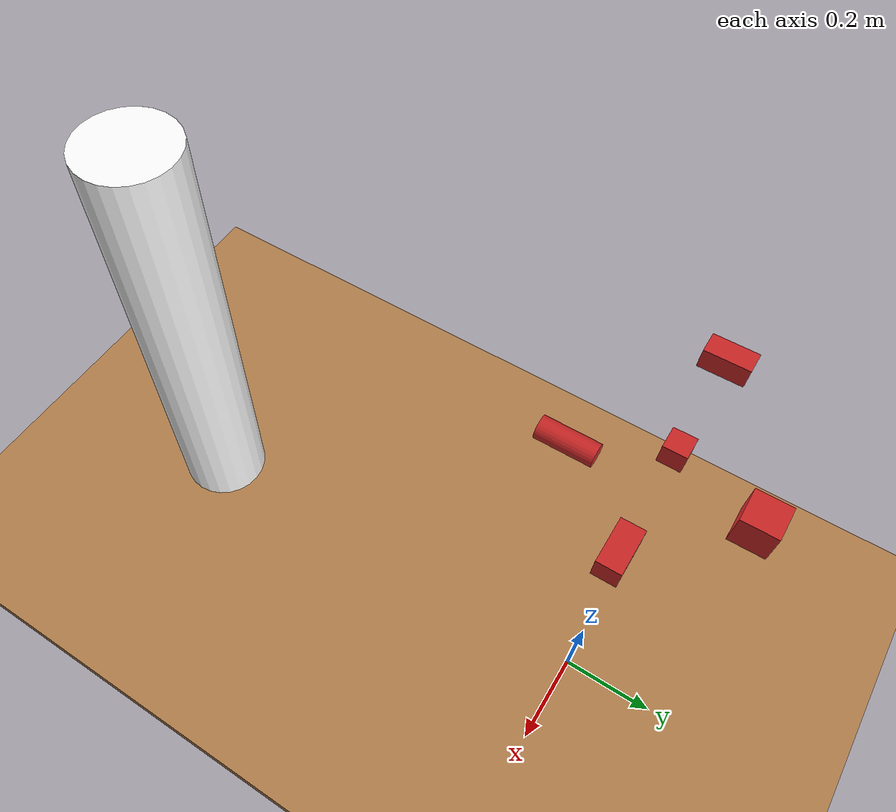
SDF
<sdf version="1.6">
 <world name="default">
  <gravity>0 0 -9.8</gravity>
  <magnetic_field>6e-06 2.3e-05 -4.2e-05</magnetic_field>
  <atmosphere type="adiabatic"/>
  <physics type="ode">
   <gravity>0.000000 0.000000 -9.810000</gravity>
   <max_contacts>5</max_contacts>
   <ode>
    <solver><type>quick</type><iters>50</iters><precon_iters>0</precon_iters><sor>1.300000</sor></solver>
    <constraints>
     <cfm>0.000000</cfm>
     <erp>0.200000</erp>
     <quickStep>true</quickStep>
     <quickStepIters>10</quickStepIters>
     <quickStepW>1.3</quickStepW>
     <contact_max_correcting_vel>100.000000</contact_max_correcting_vel>
     <contact_surface_layer>0.001000</contact_surface_layer>
     <updateRate>-1.4</updateRate>
    </constraints>
   </ode>
  </physics>
  <scene><ambient>0.4 0.4 0.4 1</ambient><background>0.7 0.7 1 1</background><shadows>1</shadows></scene>
  <spherical_coordinates>
   <surface_model>EARTH_WGS84</surface_model>
   <latitude_deg>0</latitude_deg>
   <longitude_deg>0</longitude_deg>
   <elevation>0</elevation>
   <heading_deg>0</heading_deg>
  </spherical_coordinates>
  <model name="cricket2_ball">
   <link name="link">
    <pose>0 0 0.0375 0 -0 0</pose>
    <inertial>
     <mass>0.1467</mass>
     <inertia>
      <ixx>8.25187e-05</ixx>
      <ixy>0</ixy>
      <ixz>0</ixz>
      <iyy>8.25187e-05</iyy>
      <iyz>0</iyz>
      <izz>8.25187e-05</izz>
     </inertia>
    </inertial>
    <collision name="collision">
     <geometry><box><size>0.06 0.06 0.06</size></box></geometry>
     <surface>
      <contact>
       <poissons_ratio>0.347</poissons_ratio>
       <elastic_modulus>8.8e+09</elastic_modulus>
       <ode><kp>100000</kp><kd>100</kd><max_vel>100</max_vel><min_depth>0.001</min_depth></ode>
      </contact>
      <friction>
       <torsional>
        <coefficient>1</coefficient>
        <use_patch_radius>0</use_patch_radius>
        <surface_radius>0.01</surface_radius>
       </torsional>
      </friction>
     </surface>
    </collision>
    <visual name="visual">
     <geometry><box><size>0.06 0.06 0.06</size></box></geometry>
     <material>
      <script><uri>file://media/materials/scripts/gazebo.material</uri><name>Gazebo/Red</name></script>
     </material>
    </visual>
    <velocity_decay><linear>0</linear><angular>0.005</angular></velocity_decay>
   </link>
   <pose>0.0 0.15 0.82 0.003644 -0.00082 0.000309</pose>
  </model>
  <model name="cricket4_ball">
   <link name="link">
    <pose>0 0 0.0375 0 -0 0</pose>
    <inertial>
     <mass>0.1467</mass>
     <inertia>
      <ixx>8.25187e-05</ixx>
      <ixy>0</ixy>
      <ixz>0</ixz>
      <iyy>8.25187e-05</iyy>
      <iyz>0</iyz>
      <izz>8.25187e-05</izz>
     </inertia>
    </inertial>
    <collision name="collision">
     <geometry><box><size>0.08 0.04 0.05</size></box></geometry>
     <surface>
      <contact>
       <poissons_ratio>0.347</poissons_ratio>
       <elastic_modulus>8.8e+09</elastic_modulus>
       <ode><kp>100000</kp><kd>100</kd><max_vel>100</max_vel><min_depth>0.001</min_depth></ode>
      </contact>
      <friction>
       <torsional>
        <coefficient>1</coefficient>
        <use_patch_radius>0</use_patch_radius>
        <surface_radius>0.01</surface_radius>
       </torsional>
      </friction>
     </surface>
    </collision>
    <visual name="visual">
     <geometry><box><size>0.08 0.04 0.04</size></box></geometry>
     <material>
      <script><uri>file://media/materials/scripts/gazebo.material</uri><name>Gazebo/Red</name></script>
     </material>
    </visual>
    <velocity_decay><linear>0</linear><angular>0.005</angular></velocity_decay>
   </link>
   <pose>0.15003 0.0 0.82 0.003644 -0.00082 0.000309</pose>
  </model>
  <model name="cricket6_ball">
   <link name="link">
    <pose>0 0 0.0375 0 -0 0</pose>
    <inertial>
     <mass>0.1467</mass>
     <inertia>
      <ixx>8.25187e-05</ixx>
      <ixy>0</ixy>
      <ixz>0</ixz>
      <iyy>8.25187e-05</iyy>
      <iyz>0</iyz>
      <izz>8.25187e-05</izz>
     </inertia>
    </inertial>
    <collision name="collision">
     <geometry><box><size>0.04 0.04 0.04</size></box></geometry>
     <surface>
      <contact>
       <poissons_ratio>0.347</poissons_ratio>
       <elastic_modulus>8.8e+09</elastic_modulus>
       <ode><kp>100000</kp><kd>100</kd><max_vel>100</max_vel><min_depth>0.001</min_depth></ode>
      </contact>
      <friction>
       <torsional>
        <coefficient>1</coefficient>
        <use_patch_radius>0</use_patch_radius>
        <surface_radius>0.01</surface_radius>
       </torsional>
      </friction>
     </surface>
    </collision>
    <visual name="visual">
     <geometry><box><size>0.04 0.04 0.04</size></box></geometry>
     <material>
      <script><uri>file://media/materials/scripts/gazebo.material</uri><name>Gazebo/Red</name></script>
     </material>
    </visual>
    <velocity_decay><linear>0</linear><angular>0.005</angular></velocity_decay>
   </link>
   <pose>-0.05 -0.0 0.82 0.003644 -0.00082 0.000309</pose>
  </model>
  <model name="cricket8_ball">
   <link name="link">
    <pose>0 0 0.0375 0 -0 0</pose>
    <inertial>
     <mass>0.1467</mass>
     <inertia>
      <ixx>8.25187e-05</ixx>
      <ixy>0</ixy>
      <ixz>0</ixz>
      <iyy>8.25187e-05</iyy>
      <iyz>0</iyz>
      <izz>8.25187e-05</izz>
     </inertia>
    </inertial>
    <collision name="collision">
     <geometry><box><size>0.04 0.08 0.04</size></box></geometry>
     <surface>
      <contact>
       <poissons_ratio>0.347</poissons_ratio>
       <elastic_modulus>8.8e+09</elastic_modulus>
       <ode><kp>100000</kp><kd>100</kd><max_vel>100</max_vel><min_depth>0.001</min_depth></ode>
      </contact>
      <friction>
       <torsional>
        <coefficient>1</coefficient>
        <use_patch_radius>0</use_patch_radius>
        <surface_radius>0.01</surface_radius>
       </torsional>
      </friction>
     </surface>
    </collision>
    <visual name="visual">
     <geometry><box><size>0.04 0.08 0.04</size></box></geometry>
     <material>
      <script><uri>file://media/materials/scripts/gazebo.material</uri><name>Gazebo/Red</name></script>
     </material>
    </visual>
    <velocity_decay><linear>0</linear><angular>0.005</angular></velocity_decay>
   </link>
   <pose>-0.25 -0.0 0.82 0.003644 -0.00082 0.000309</pose>
  </model>
  <model name="cylinder_5">
   <link name="link">
    <pose>-0.0 -0.15 0.82 1.5707 -0 0</pose>
    <inertial>
     <mass>0.14</mass>
     <inertia><ixx>0.145833</ixx><ixy>0</ixy><ixz>0</ixz><iyy>0.145833</iyy><iyz>0</iyz><izz>0.125</izz></inertia>
    </inertial>
    <visual name="visual">
     <geometry><cylinder><radius>0.02</radius><length>0.1</length></cylinder></geometry>
     <material>
      <lighting>1</lighting>
      <script><uri>file://media/materials/scripts/gazebo.material</uri><name>Gazebo/Red</name></script>
      <ambient>0.3 0.3 0.3 1</ambient>
      <diffuse>0.7 0.7 0.7 1</diffuse>
      <specular>0.01 0.01 0.01 1</specular>
      <emissive>0 0 0 1</emissive>
      <shader type="vertex"><normal_map>__default__</normal_map></shader>
     </material>
    </visual>
    <collision name="collision">
     <geometry><cylinder><radius>0.02</radius><length>0.1</length></cylinder></geometry>
     <surface>
      <friction>
       <ode><mu>1</mu><mu2>1</mu2><fdir1>0 0 0</fdir1><slip1>0</slip1><slip2>0</slip2></ode>
       <torsional>
        <coefficient>1</coefficient>
        <patch_radius>0</patch_radius>
        <surface_radius>0</surface_radius>
        <use_patch_radius>1</use_patch_radius>
        <ode><slip>0</slip></ode>
       </torsional>
      </friction>
      <bounce><restitution_coefficient>0</restitution_coefficient><threshold>1e+06</threshold></bounce>
      <contact>
       <collide_without_contact>0</collide_without_contact>
       <collide_without_contact_bitmask>1</collide_without_contact_bitmask>
       <collide_bitmask>1</collide_bitmask>
       <ode>
        <soft_cfm>0</soft_cfm>
        <soft_erp>0.2</soft_erp>
        <kp>1e+13</kp>
        <kd>1</kd>
        <max_vel>0.01</max_vel>
        <min_depth>0</min_depth>
       </ode>
       <bullet>
        <split_impulse>1</split_impulse>
        <split_impulse_penetration_threshold>-0.01</split_impulse_penetration_threshold>
        <soft_cfm>0</soft_cfm>
        <soft_erp>0.2</soft_erp>
        <kp>1e+13</kp>
        <kd>1</kd>
       </bullet>
      </contact>
     </surface>
    </collision>
   </link>
   <static>0</static>
  </model>
  <light name="user_spot_light_0" type="spot">
   <pose>-0.614545 -0.753038 2.0714 0.392405 -0 0</pose>
   <diffuse>0.7 0.5 0.2 1</diffuse>
   <specular>0.1 0.1 0.1 1</specular>
   <direction>0 0 -1</direction>
   <attenuation>
    <range>20</range>
    <constant>0.5</constant>
    <linear>0.01</linear>
    <quadratic>0.001</quadratic>
   </attenuation>
   <cast_shadows>0</cast_shadows>
   <spot><inner_angle>0.6</inner_angle><outer_angle>1</outer_angle><falloff>1</falloff></spot>
  </light>
  <light name="user_directional_light_0" type="directional">
   <pose>0 0 3 0 -0 0</pose>
   <diffuse>0.9 0.85 0.8 1</diffuse>
   <specular>0.1 0.1 0.1 1</specular>
   <direction>0.1 0.1 -0.9</direction>
   <attenuation>
    <range>20</range>
    <constant>0.5</constant>
    <linear>0.01</linear>
    <quadratic>0.001</quadratic>
   </attenuation>
  </light>
  <model name="floor">
   <static>1</static>
   <pose>0.0 0.0 -0.025 0 0 0</pose>
   <link name="link">
    <inertial>
     <mass>1</mass>
     <inertia>
      <ixx>0.166667</ixx>
      <ixy>0</ixy>
      <ixz>0</ixz>
      <iyy>0.166667</iyy>
      <iyz>0</iyz>
      <izz>0.166667</izz>
     </inertia>
    </inertial>
    <collision name="collision"><geometry><box><size>4.0 4.0 0.05</size></box></geometry></collision>
    <visual name="visual">
     <geometry><box><size>4.0 4.0 0.05</size></box></geometry>
     <material>
      <script><uri>file://media/materials/scripts/gazebo.material</uri><name>Gazebo/Wood</name></script>
      <ambient>1 1 1 1</ambient>
     </material>
    </visual>
   </link>
  </model>
  <model name="robot_pilar">
   <static>1</static>
   <pose>0.0 -1.0 0.5 0 -0 0</pose>
   <link name="link">
    <inertial>
     <mass>1</mass>
     <inertia><ixx>0.145833</ixx><ixy>0</ixy><ixz>0</ixz><iyy>0.145833</iyy><iyz>0</iyz><izz>0.125</izz></inertia>
    </inertial>
    <collision name="collision">
     <geometry><cylinder><radius>0.1</radius><length>1</length></cylinder></geometry>
    </collision>
    <visual name="visual">
     <geometry><cylinder><radius>0.1</radius><length>1</length></cylinder></geometry>
     <material>
      <script><uri>file://media/materials/scripts/gazebo.material</uri><name>Gazebo/Metal</name></script>
      <ambient>1 1 1 1</ambient>
     </material>
    </visual>
   </link>
  </model>
 </world>
</sdf>
